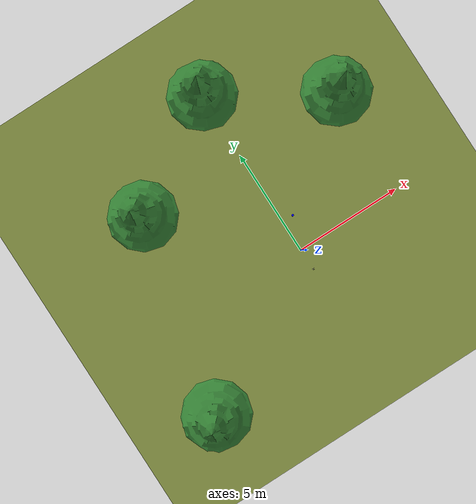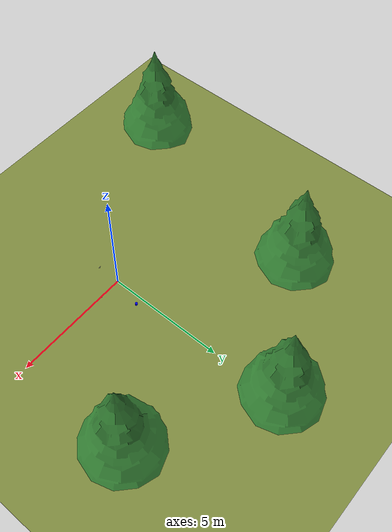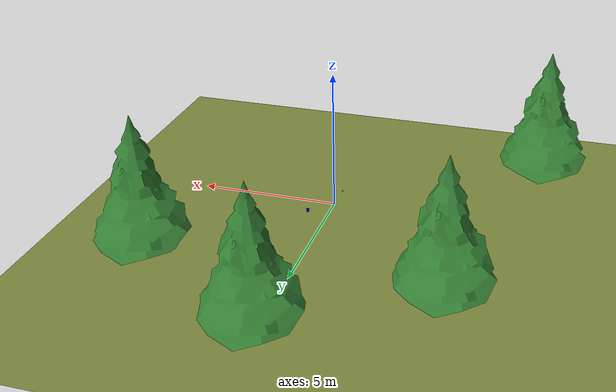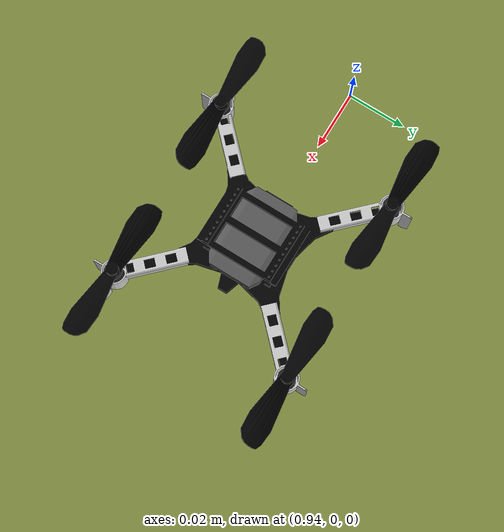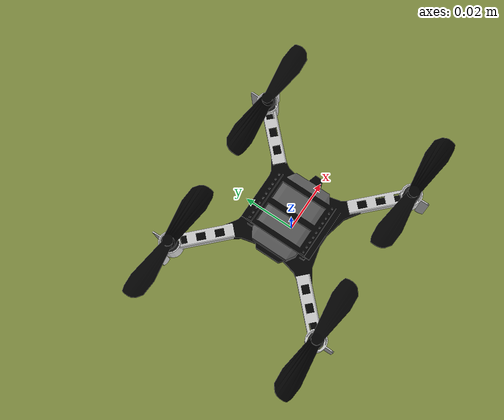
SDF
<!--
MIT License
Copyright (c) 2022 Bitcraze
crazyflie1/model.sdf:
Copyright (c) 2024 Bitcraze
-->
<sdf version="1.6">
 <world name="crazyflie_world">
  <physics name="1ms" type="ode">
   <max_step_size>0.001</max_step_size>
   <real_time_factor>0.04</real_time_factor>
  </physics>
  <plugin filename="gz-sim-physics-system" name="gz::sim::systems::Physics"/>
  <plugin filename="gz-sim-user-commands-system" name="gz::sim::systems::UserCommands"/>
  <plugin filename="gz-sim-scene-broadcaster-system" name="gz::sim::systems::SceneBroadcaster"/>
  <plugin filename="gz-sim-sensors-system" name="gz::sim::systems::Sensors">
   <render_engine>ogre2</render_engine>
  </plugin>
  <light type="directional" name="sun">
   <pose>0 0 10 0 0 0</pose>
   <diffuse>0.8 0.8 0.8 1</diffuse>
   <specular>0.2 0.2 0.2 1</specular>
   <attenuation>
    <range>1000</range>
    <constant>0.9</constant>
    <linear>0.01</linear>
    <quadratic>0.001</quadratic>
   </attenuation>
   <direction>-0.5 0.1 -0.9</direction>
  </light>
  <model name="ground_plane">
   <static>true</static>
   <link name="link">
    <collision name="collision">
     <geometry><plane><normal>0 0 1</normal><size>100 100</size></plane></geometry>
    </collision>
    <visual name="visual">
     <geometry><plane><normal>0 0 1</normal><size>100 100</size></plane></geometry>
     <material>
      <ambient>0.30 0.35 0.15 1</ambient>
      <diffuse>0.50 0.55 0.25 1</diffuse>
      <specular>0.02 0.02 0.02 1</specular>
     </material>
    </visual>
   </link>
  </model>
  <include><uri>model://crazyflie1</uri><name>crazyflie1</name></include>
  <include><uri>model://crazyflie2</uri><name>crazyflie2</name><pose>1 0 0 0 0 0</pose></include>
  <include><uri>model://crazyflie3</uri><name>crazyflie3</name><pose>0 -1 0 0 0 0</pose></include>
  <include><uri>file://lidar_3D.sdf</uri><name>3D_lidar</name><pose>0.5 1.5 0.5 0 0 0</pose></include>
  <include><uri>model://pine_tree</uri><name>pine_tree</name><pose>-5 5 0 0 0 0</pose></include>
  <include><uri>model://pine_tree</uri><name>pine_tree3</name><pose>5 5 0 0 0 0</pose></include>
  <include><uri>model://pine_tree</uri><name>pine_tree4</name><pose>0 8 0 0 0 0</pose></include>
  <include><uri>model://pine_tree</uri><name>pine_tree2</name><pose>-7 -4 0 0 0 0</pose></include>
 </world>
</sdf>

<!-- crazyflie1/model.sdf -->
<sdf version="1.8">
  <model name="crazyflie1">
    <link name="crazyflie1/body">
      <pose> 0 0 17.425E-3 0 0 0</pose>
      <inertial>
        <mass>0.025</mass>
        <inertia>
          <ixx>16.571710E-06</ixx>
          <iyy>16.655602E-06</iyy>
          <izz>29.261652E-06</izz>
          <ixy>0.830806E-06</ixy>
          <ixz>0.718277E-06</ixz>
          <iyz>1.800197E-06</iyz>
        </inertia>
      </inertial>
      <collision name="crazyflie1/body_collision">
        <geometry>
          <box>
            <size>0.10 0.10 34.850E-3</size>
          </box>
        </geometry>
      </collision>
      <visual name="crazyflie1/body_visual">
        <geometry>
          <mesh>
            <uri>../../../meshes/collada_files/cf2_assembly.dae</uri>
          </mesh>
        </geometry>
      </visual>
      <sensor name='multiranger' type='gpu_lidar'>"
        <pose relative_to='crazyflie1/base_link'>0 0 0.1 0 0 0</pose>
        <topic>lidar</topic>
        <update_rate>10</update_rate>
        <ray>
          <scan>
            <horizontal>
                <samples>4</samples>
                <resolution>1</resolution>
                <min_angle>-3.14</min_angle>
                <max_angle>1.57</max_angle>
            </horizontal>
            <vertical>
                <samples>1</samples>
                <resolution>0.01</resolution>
                <min_angle>0</min_angle>
                <max_angle>0</max_angle>
            </vertical>
          </scan>
          <range>
            <min>0.01</min>
            <max>3.49</max>
            <resolution>0.01</resolution>
          </range>
        </ray>
        <always_on>1</always_on>
        <visualize>true</visualize>
      </sensor>
    </link>
    <link name="crazyflie1/m1_prop">
      <pose>0.031 -0.031 0.021 0 0 0</pose>
      <inertial>
        <mass>0.0008</mass>
        <inertia>
          <ixx>8.33333E-09</ixx>
          <iyy>1.08333E-07</iyy>
          <izz>1.13333E-07</izz>
        </inertia>
      </inertial>
      <visual name="crazyflie1/m1_visual">
        <geometry>
          <mesh>
            <uri>../../../meshes/collada_files/ccw_prop.dae</uri>
          </mesh>
        </geometry>
      </visual>
    </link>
    <link name="crazyflie1/m2_prop">
      <pose>-0.031 -0.031 0.021 0 0 0</pose>
      <inertial>
        <mass>0.0008</mass>
        <inertia>
          <ixx>8.33333E-09</ixx>
          <iyy>1.08333E-07</iyy>
          <izz>1.13333E-07</izz>
        </inertia>
      </inertial>
      <visual name="crazyflie1/m2_visual">
        <geometry>
          <mesh>
            <uri>../../../meshes/collada_files/cw_prop.dae</uri>
          </mesh>
        </geometry>
      </visual>
    </link>
    <link name="crazyflie1/m3_prop">
      <pose>-0.031 0.031 0.021 0 0 0</pose>
      <inertial>
        <mass>0.0008</mass>
        <inertia>
          <ixx>8.33333E-09</ixx>
          <iyy>1.08333E-07</iyy>
          <izz>1.13333E-07</izz>
        </inertia>
      </inertial>
      <visual name="crazyflie1/m3_visual">
        <geometry>
          <mesh>
            <uri>../../../meshes/collada_files/ccw_prop.dae</uri>
          </mesh>
        </geometry>
      </visual>
    </link>
    <link name="crazyflie1/m4_prop">
      <pose>0.031 0.031 0.021 0 0 0</pose>
      <inertial>
        <mass>0.0008</mass>
        <inertia>
          <ixx>8.33333E-09</ixx>
          <iyy>1.08333E-07</iyy>
          <izz>1.13333E-07</izz>
        </inertia>
      </inertial>
      <visual name="crazyflie1/m4_visual">
        <geometry>
          <mesh>
            <uri>../../../meshes/collada_files/cw_prop.dae</uri>
          </mesh>
        </geometry>
      </visual>
    </link>
    <joint name="crazyflie1/m1_joint" type="revolute">
      <child>crazyflie1/m1_prop</child>
      <parent>crazyflie1/body</parent>
      <axis>
        <xyz>0 0 1</xyz>
      </axis>
    </joint>
    <joint name="crazyflie1/m2_joint" type="revolute">
      <child>crazyflie1/m2_prop</child>
      <parent>crazyflie1/body</parent>
      <axis>
        <xyz>0 0 1</xyz>
      </axis>
    </joint>
    <joint name="crazyflie1/m3_joint" type="revolute">
      <child>crazyflie1/m3_prop</child>
      <parent>crazyflie1/body</parent>
      <axis>
        <xyz>0 0 1</xyz>
      </axis>
    </joint>
    <joint name="crazyflie1/m4_joint" type="revolute">
      <child>crazyflie1/m4_prop</child>
      <parent>crazyflie1/body</parent>
      <axis>
        <xyz>0 0 1</xyz>
      </axis>
    </joint>
    <plugin
      filename="gz-sim-multicopter-motor-model-system"
      name="gz::sim::systems::MulticopterMotorModel">
      <robotNamespace>crazyflie1</robotNamespace>
      <jointName>crazyflie1/m1_joint</jointName>
      <linkName>crazyflie1/m1_prop</linkName>
      <turningDirection>ccw</turningDirection>
      <maxRotVelocity>2618</maxRotVelocity>
      <motorConstant>1.28192e-08</motorConstant>
      <momentConstant>0.005964552</momentConstant>
      <rotorDragCoefficient>8.06428e-05</rotorDragCoefficient>
      <rollingMomentCoefficient>0.0000001</rollingMomentCoefficient>
      <rotorVelocitySlowdownSim>20</rotorVelocitySlowdownSim>
      <actuator_number>0</actuator_number>
      <motorType>velocity</motorType>
    </plugin>
    <plugin
      filename="gz-sim-multicopter-motor-model-system"
      name="gz::sim::systems::MulticopterMotorModel">
      <robotNamespace>crazyflie1</robotNamespace>
      <jointName>crazyflie1/m2_joint</jointName>
      <linkName>crazyflie1/m2_prop</linkName>
      <turningDirection>cw</turningDirection>
      <maxRotVelocity>2618</maxRotVelocity>
      <motorConstant>1.28192e-08</motorConstant>
      <momentConstant>0.005964552</momentConstant>
      <rotorDragCoefficient>8.06428e-05</rotorDragCoefficient>
      <rollingMomentCoefficient>0.0000001</rollingMomentCoefficient>
      <rotorVelocitySlowdownSim>20</rotorVelocitySlowdownSim>
      <actuator_number>1</actuator_number>
      <motorType>velocity</motorType>
    </plugin>
    <plugin
      filename="gz-sim-multicopter-motor-model-system"
      name="gz::sim::systems::MulticopterMotorModel">
      <robotNamespace>crazyflie1</robotNamespace>
      <jointName>crazyflie1/m3_joint</jointName>
      <linkName>crazyflie1/m3_prop</linkName>
      <turningDirection>ccw</turningDirection>
      <maxRotVelocity>2618</maxRotVelocity>
      <motorConstant>1.28192e-08</motorConstant>
      <momentConstant>0.005964552</momentConstant>
      <rotorDragCoefficient>8.06428e-05</rotorDragCoefficient>
      <rollingMomentCoefficient>0.0000001</rollingMomentCoefficient>
      <rotorVelocitySlowdownSim>20</rotorVelocitySlowdownSim>
      <actuator_number>2</actuator_number>
      <motorType>velocity</motorType>
    </plugin>
    <plugin
      filename="gz-sim-multicopter-motor-model-system"
      name="gz::sim::systems::MulticopterMotorModel">
      <robotNamespace>crazyflie1</robotNamespace>
      <jointName>crazyflie1/m4_joint</jointName>
      <linkName>crazyflie1/m4_prop</linkName>
      <turningDirection>cw</turningDirection>
      <maxRotVelocity>2618</maxRotVelocity>
      <motorConstant>1.28192e-08</motorConstant>
      <momentConstant>0.005964552</momentConstant>
      <rotorDragCoefficient>8.06428e-05</rotorDragCoefficient>
      <rollingMomentCoefficient>0.0000001</rollingMomentCoefficient>
      <rotorVelocitySlowdownSim>20</rotorVelocitySlowdownSim>
      <actuator_number>3</actuator_number>
      <motorType>velocity</motorType>
    </plugin>
    <plugin
      filename="gz-sim-multicopter-control-system"
      name="gz::sim::systems::MulticopterVelocityControl">
      <robotNamespace>crazyflie1</robotNamespace>
      <commandSubTopic>gazebo/command/twist</commandSubTopic>
      <enableSubTopic>enable</enableSubTopic>
      <comLinkName>crazyflie1/body</comLinkName>
      <velocityGain>1.25 1.25 0.2425</velocityGain>
      <attitudeGain>0.02 0.02 0.02</attitudeGain>
      <angularRateGain>0.005 0.005 0.005</angularRateGain>
      <rotorConfiguration>
        <rotor>
          <jointName>crazyflie1/m1_joint</jointName>
          <forceConstant>1.28192e-08</forceConstant>
          <momentConstant>0.005964552</momentConstant>
          <direction>1</direction>
        </rotor>
        <rotor>
          <jointName>crazyflie1/m2_joint</jointName>
          <forceConstant>1.28192e-08</forceConstant>
          <momentConstant>0.005964552</momentConstant>
          <direction>-1</direction>
        </rotor>
        <rotor>
          <jointName>crazyflie1/m3_joint</jointName>
          <forceConstant>1.28192e-08</forceConstant>
          <momentConstant>0.005964552</momentConstant>
          <direction>1</direction>
        </rotor>
        <rotor>
          <jointName>crazyflie1/m4_joint</jointName>
          <forceConstant>1.28192e-08</forceConstant>
          <momentConstant>0.005964552</momentConstant>
          <direction>-1</direction>
        </rotor>
      </rotorConfiguration>
    </plugin>
    <plugin
      filename="gz-sim-odometry-publisher-system"
      name="gz::sim::systems::OdometryPublisher">
      <dimensions>3</dimensions>
    </plugin>
  </model>
</sdf>

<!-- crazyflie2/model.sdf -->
<sdf version="1.8">
  <model name="crazyflie2">
    <link name="crazyflie2/body">
      <pose> 0 0 17.425E-3 0 0 0</pose>
      <inertial>
        <mass>0.025</mass>
        <inertia>
          <ixx>16.571710E-06</ixx>
          <iyy>16.655602E-06</iyy>
          <izz>29.261652E-06</izz>
          <ixy>0.830806E-06</ixy>
          <ixz>0.718277E-06</ixz>
          <iyz>1.800197E-06</iyz>
        </inertia>
      </inertial>
      <collision name="crazyflie2/body_collision">
        <geometry>
          <box>
            <size>0.10 0.10 34.850E-3</size>
          </box>
        </geometry>
      </collision>
      <visual name="crazyflie2/body_visual">
        <geometry>
          <mesh>
            <uri>../../../meshes/collada_files/cf2_assembly.dae</uri>
          </mesh>
        </geometry>
      </visual>
      <sensor name='multiranger' type='gpu_lidar'>"
        <pose relative_to='crazyflie2/base_link'>0 0 0.1 0 0 0</pose>
        <topic>lidar</topic>
        <update_rate>10</update_rate>
        <ray>
          <scan>
            <horizontal>
                <samples>4</samples>
                <resolution>1</resolution>
                <min_angle>-3.14</min_angle>
                <max_angle>1.57</max_angle>
            </horizontal>
            <vertical>
                <samples>1</samples>
                <resolution>0.01</resolution>
                <min_angle>0</min_angle>
                <max_angle>0</max_angle>
            </vertical>
          </scan>
          <range>
            <min>0.01</min>
            <max>3.49</max>
            <resolution>0.01</resolution>
          </range>
        </ray>
        <always_on>1</always_on>
        <visualize>true</visualize>
      </sensor>
    </link>
    <link name="crazyflie2/m1_prop">
      <pose>0.031 -0.031 0.021 0 0 0</pose>
      <inertial>
        <mass>0.0008</mass>
        <inertia>
          <ixx>8.33333E-09</ixx>
          <iyy>1.08333E-07</iyy>
          <izz>1.13333E-07</izz>
        </inertia>
      </inertial>
      <visual name="crazyflie2/m1_visual">
        <geometry>
          <mesh>
            <uri>../../../meshes/collada_files/ccw_prop.dae</uri>
          </mesh>
        </geometry>
      </visual>
    </link>
    <link name="crazyflie2/m2_prop">
      <pose>-0.031 -0.031 0.021 0 0 0</pose>
      <inertial>
        <mass>0.0008</mass>
        <inertia>
          <ixx>8.33333E-09</ixx>
          <iyy>1.08333E-07</iyy>
          <izz>1.13333E-07</izz>
        </inertia>
      </inertial>
      <visual name="crazyflie2/m2_visual">
        <geometry>
          <mesh>
            <uri>../../../meshes/collada_files/cw_prop.dae</uri>
          </mesh>
        </geometry>
      </visual>
    </link>
    <link name="crazyflie2/m3_prop">
      <pose>-0.031 0.031 0.021 0 0 0</pose>
      <inertial>
        <mass>0.0008</mass>
        <inertia>
          <ixx>8.33333E-09</ixx>
          <iyy>1.08333E-07</iyy>
          <izz>1.13333E-07</izz>
        </inertia>
      </inertial>
      <visual name="crazyflie2/m3_visual">
        <geometry>
          <mesh>
            <uri>../../../meshes/collada_files/ccw_prop.dae</uri>
          </mesh>
        </geometry>
      </visual>
    </link>
    <link name="crazyflie2/m4_prop">
      <pose>0.031 0.031 0.021 0 0 0</pose>
      <inertial>
        <mass>0.0008</mass>
        <inertia>
          <ixx>8.33333E-09</ixx>
          <iyy>1.08333E-07</iyy>
          <izz>1.13333E-07</izz>
        </inertia>
      </inertial>
      <visual name="crazyflie2/m4_visual">
        <geometry>
          <mesh>
            <uri>../../../meshes/collada_files/cw_prop.dae</uri>
          </mesh>
        </geometry>
      </visual>
    </link>
    <joint name="crazyflie2/m1_joint" type="revolute">
      <child>crazyflie2/m1_prop</child>
      <parent>crazyflie2/body</parent>
      <axis>
        <xyz>0 0 1</xyz>
      </axis>
    </joint>
    <joint name="crazyflie2/m2_joint" type="revolute">
      <child>crazyflie2/m2_prop</child>
      <parent>crazyflie2/body</parent>
      <axis>
        <xyz>0 0 1</xyz>
      </axis>
    </joint>
    <joint name="crazyflie2/m3_joint" type="revolute">
      <child>crazyflie2/m3_prop</child>
      <parent>crazyflie2/body</parent>
      <axis>
        <xyz>0 0 1</xyz>
      </axis>
    </joint>
    <joint name="crazyflie2/m4_joint" type="revolute">
      <child>crazyflie2/m4_prop</child>
      <parent>crazyflie2/body</parent>
      <axis>
        <xyz>0 0 1</xyz>
      </axis>
    </joint>
    <plugin
      filename="gz-sim-multicopter-motor-model-system"
      name="gz::sim::systems::MulticopterMotorModel">
      <robotNamespace>crazyflie2</robotNamespace>
      <jointName>crazyflie2/m1_joint</jointName>
      <linkName>crazyflie2/m1_prop</linkName>
      <turningDirection>ccw</turningDirection>
      <maxRotVelocity>2618</maxRotVelocity>
      <motorConstant>1.28192e-08</motorConstant>
      <momentConstant>0.005964552</momentConstant>
      <rotorDragCoefficient>8.06428e-05</rotorDragCoefficient>
      <rollingMomentCoefficient>0.0000001</rollingMomentCoefficient>
      <rotorVelocitySlowdownSim>20</rotorVelocitySlowdownSim>
      <actuator_number>0</actuator_number>
      <motorType>velocity</motorType>
    </plugin>
    <plugin
      filename="gz-sim-multicopter-motor-model-system"
      name="gz::sim::systems::MulticopterMotorModel">
      <robotNamespace>crazyflie2</robotNamespace>
      <jointName>crazyflie2/m2_joint</jointName>
      <linkName>crazyflie2/m2_prop</linkName>
      <turningDirection>cw</turningDirection>
      <maxRotVelocity>2618</maxRotVelocity>
      <motorConstant>1.28192e-08</motorConstant>
      <momentConstant>0.005964552</momentConstant>
      <rotorDragCoefficient>8.06428e-05</rotorDragCoefficient>
      <rollingMomentCoefficient>0.0000001</rollingMomentCoefficient>
      <rotorVelocitySlowdownSim>20</rotorVelocitySlowdownSim>
      <actuator_number>1</actuator_number>
      <motorType>velocity</motorType>
    </plugin>
    <plugin
      filename="gz-sim-multicopter-motor-model-system"
      name="gz::sim::systems::MulticopterMotorModel">
      <robotNamespace>crazyflie2</robotNamespace>
      <jointName>crazyflie2/m3_joint</jointName>
      <linkName>crazyflie2/m3_prop</linkName>
      <turningDirection>ccw</turningDirection>
      <maxRotVelocity>2618</maxRotVelocity>
      <motorConstant>1.28192e-08</motorConstant>
      <momentConstant>0.005964552</momentConstant>
      <rotorDragCoefficient>8.06428e-05</rotorDragCoefficient>
      <rollingMomentCoefficient>0.0000001</rollingMomentCoefficient>
      <rotorVelocitySlowdownSim>20</rotorVelocitySlowdownSim>
      <actuator_number>2</actuator_number>
      <motorType>velocity</motorType>
    </plugin>
    <plugin
      filename="gz-sim-multicopter-motor-model-system"
      name="gz::sim::systems::MulticopterMotorModel">
      <robotNamespace>crazyflie2</robotNamespace>
      <jointName>crazyflie2/m4_joint</jointName>
      <linkName>crazyflie2/m4_prop</linkName>
      <turningDirection>cw</turningDirection>
      <maxRotVelocity>2618</maxRotVelocity>
      <motorConstant>1.28192e-08</motorConstant>
      <momentConstant>0.005964552</momentConstant>
      <rotorDragCoefficient>8.06428e-05</rotorDragCoefficient>
      <rollingMomentCoefficient>0.0000001</rollingMomentCoefficient>
      <rotorVelocitySlowdownSim>20</rotorVelocitySlowdownSim>
      <actuator_number>3</actuator_number>
      <motorType>velocity</motorType>
    </plugin>
    <plugin
      filename="gz-sim-multicopter-control-system"
      name="gz::sim::systems::MulticopterVelocityControl">
      <robotNamespace>crazyflie2</robotNamespace>
      <commandSubTopic>gazebo/command/twist</commandSubTopic>
      <enableSubTopic>enable</enableSubTopic>
      <comLinkName>crazyflie2/body</comLinkName>
      <velocityGain>1.25 1.25 0.2425</velocityGain>
      <attitudeGain>0.02 0.02 0.02</attitudeGain>
      <angularRateGain>0.005 0.005 0.005</angularRateGain>
      <rotorConfiguration>
        <rotor>
          <jointName>crazyflie2/m1_joint</jointName>
          <forceConstant>1.28192e-08</forceConstant>
          <momentConstant>0.005964552</momentConstant>
          <direction>1</direction>
        </rotor>
        <rotor>
          <jointName>crazyflie2/m2_joint</jointName>
          <forceConstant>1.28192e-08</forceConstant>
          <momentConstant>0.005964552</momentConstant>
          <direction>-1</direction>
        </rotor>
        <rotor>
          <jointName>crazyflie2/m3_joint</jointName>
          <forceConstant>1.28192e-08</forceConstant>
          <momentConstant>0.005964552</momentConstant>
          <direction>1</direction>
        </rotor>
        <rotor>
          <jointName>crazyflie2/m4_joint</jointName>
          <forceConstant>1.28192e-08</forceConstant>
          <momentConstant>0.005964552</momentConstant>
          <direction>-1</direction>
        </rotor>
      </rotorConfiguration>
    </plugin>
    <plugin
      filename="gz-sim-odometry-publisher-system"
      name="gz::sim::systems::OdometryPublisher">
      <dimensions>3</dimensions>
    </plugin>
  </model>
</sdf>

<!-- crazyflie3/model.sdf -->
<sdf version="1.8">
  <model name="crazyflie3">
    <link name="crazyflie3/body">
      <pose> 0 0 17.425E-3 0 0 0</pose>
      <inertial>
        <mass>0.025</mass>
        <inertia>
          <ixx>16.571710E-06</ixx>
          <iyy>16.655602E-06</iyy>
          <izz>29.261652E-06</izz>
          <ixy>0.830806E-06</ixy>
          <ixz>0.718277E-06</ixz>
          <iyz>1.800197E-06</iyz>
        </inertia>
      </inertial>
      <collision name="crazyflie3/body_collision">
        <geometry>
          <box>
            <size>0.10 0.10 34.850E-3</size>
          </box>
        </geometry>
      </collision>
      <visual name="crazyflie3/body_visual">
        <geometry>
          <mesh>
            <uri>../../../meshes/collada_files/cf2_assembly.dae</uri>
          </mesh>
        </geometry>
      </visual>
      <sensor name='multiranger' type='gpu_lidar'>"
        <pose relative_to='crazyflie3/base_link'>0 0 0.1 0 0 0</pose>
        <topic>lidar</topic>
        <update_rate>10</update_rate>
        <ray>
          <scan>
            <horizontal>
                <samples>4</samples>
                <resolution>1</resolution>
                <min_angle>-3.14</min_angle>
                <max_angle>1.57</max_angle>
            </horizontal>
            <vertical>
                <samples>1</samples>
                <resolution>0.01</resolution>
                <min_angle>0</min_angle>
                <max_angle>0</max_angle>
            </vertical>
          </scan>
          <range>
            <min>0.01</min>
            <max>3.49</max>
            <resolution>0.01</resolution>
          </range>
        </ray>
        <always_on>1</always_on>
        <visualize>true</visualize>
      </sensor>
    </link>
    <link name="crazyflie3/m1_prop">
      <pose>0.031 -0.031 0.021 0 0 0</pose>
      <inertial>
        <mass>0.0008</mass>
        <inertia>
          <ixx>8.33333E-09</ixx>
          <iyy>1.08333E-07</iyy>
          <izz>1.13333E-07</izz>
        </inertia>
      </inertial>
      <visual name="crazyflie3/m1_visual">
        <geometry>
          <mesh>
            <uri>../../../meshes/collada_files/ccw_prop.dae</uri>
          </mesh>
        </geometry>
      </visual>
    </link>
    <link name="crazyflie3/m2_prop">
      <pose>-0.031 -0.031 0.021 0 0 0</pose>
      <inertial>
        <mass>0.0008</mass>
        <inertia>
          <ixx>8.33333E-09</ixx>
          <iyy>1.08333E-07</iyy>
          <izz>1.13333E-07</izz>
        </inertia>
      </inertial>
      <visual name="crazyflie3/m2_visual">
        <geometry>
          <mesh>
            <uri>../../../meshes/collada_files/cw_prop.dae</uri>
          </mesh>
        </geometry>
      </visual>
    </link>
    <link name="crazyflie3/m3_prop">
      <pose>-0.031 0.031 0.021 0 0 0</pose>
      <inertial>
        <mass>0.0008</mass>
        <inertia>
          <ixx>8.33333E-09</ixx>
          <iyy>1.08333E-07</iyy>
          <izz>1.13333E-07</izz>
        </inertia>
      </inertial>
      <visual name="crazyflie3/m3_visual">
        <geometry>
          <mesh>
            <uri>../../../meshes/collada_files/ccw_prop.dae</uri>
          </mesh>
        </geometry>
      </visual>
    </link>
    <link name="crazyflie3/m4_prop">
      <pose>0.031 0.031 0.021 0 0 0</pose>
      <inertial>
        <mass>0.0008</mass>
        <inertia>
          <ixx>8.33333E-09</ixx>
          <iyy>1.08333E-07</iyy>
          <izz>1.13333E-07</izz>
        </inertia>
      </inertial>
      <visual name="crazyflie3/m4_visual">
        <geometry>
          <mesh>
            <uri>../../../meshes/collada_files/cw_prop.dae</uri>
          </mesh>
        </geometry>
      </visual>
    </link>
    <joint name="crazyflie3/m1_joint" type="revolute">
      <child>crazyflie3/m1_prop</child>
      <parent>crazyflie3/body</parent>
      <axis>
        <xyz>0 0 1</xyz>
      </axis>
    </joint>
    <joint name="crazyflie3/m2_joint" type="revolute">
      <child>crazyflie3/m2_prop</child>
      <parent>crazyflie3/body</parent>
      <axis>
        <xyz>0 0 1</xyz>
      </axis>
    </joint>
    <joint name="crazyflie3/m3_joint" type="revolute">
      <child>crazyflie3/m3_prop</child>
      <parent>crazyflie3/body</parent>
      <axis>
        <xyz>0 0 1</xyz>
      </axis>
    </joint>
    <joint name="crazyflie3/m4_joint" type="revolute">
      <child>crazyflie3/m4_prop</child>
      <parent>crazyflie3/body</parent>
      <axis>
        <xyz>0 0 1</xyz>
      </axis>
    </joint>
    <plugin
      filename="gz-sim-multicopter-motor-model-system"
      name="gz::sim::systems::MulticopterMotorModel">
      <robotNamespace>crazyflie3</robotNamespace>
      <jointName>crazyflie3/m1_joint</jointName>
      <linkName>crazyflie3/m1_prop</linkName>
      <turningDirection>ccw</turningDirection>
      <maxRotVelocity>2618</maxRotVelocity>
      <motorConstant>1.28192e-08</motorConstant>
      <momentConstant>0.005964552</momentConstant>
      <rotorDragCoefficient>8.06428e-05</rotorDragCoefficient>
      <rollingMomentCoefficient>0.0000001</rollingMomentCoefficient>
      <rotorVelocitySlowdownSim>20</rotorVelocitySlowdownSim>
      <actuator_number>0</actuator_number>
      <motorType>velocity</motorType>
    </plugin>
    <plugin
      filename="gz-sim-multicopter-motor-model-system"
      name="gz::sim::systems::MulticopterMotorModel">
      <robotNamespace>crazyflie3</robotNamespace>
      <jointName>crazyflie3/m2_joint</jointName>
      <linkName>crazyflie3/m2_prop</linkName>
      <turningDirection>cw</turningDirection>
      <maxRotVelocity>2618</maxRotVelocity>
      <motorConstant>1.28192e-08</motorConstant>
      <momentConstant>0.005964552</momentConstant>
      <rotorDragCoefficient>8.06428e-05</rotorDragCoefficient>
      <rollingMomentCoefficient>0.0000001</rollingMomentCoefficient>
      <rotorVelocitySlowdownSim>20</rotorVelocitySlowdownSim>
      <actuator_number>1</actuator_number>
      <motorType>velocity</motorType>
    </plugin>
    <plugin
      filename="gz-sim-multicopter-motor-model-system"
      name="gz::sim::systems::MulticopterMotorModel">
      <robotNamespace>crazyflie3</robotNamespace>
      <jointName>crazyflie3/m3_joint</jointName>
      <linkName>crazyflie3/m3_prop</linkName>
      <turningDirection>ccw</turningDirection>
      <maxRotVelocity>2618</maxRotVelocity>
      <motorConstant>1.28192e-08</motorConstant>
      <momentConstant>0.005964552</momentConstant>
      <rotorDragCoefficient>8.06428e-05</rotorDragCoefficient>
      <rollingMomentCoefficient>0.0000001</rollingMomentCoefficient>
      <rotorVelocitySlowdownSim>20</rotorVelocitySlowdownSim>
      <actuator_number>2</actuator_number>
      <motorType>velocity</motorType>
    </plugin>
    <plugin
      filename="gz-sim-multicopter-motor-model-system"
      name="gz::sim::systems::MulticopterMotorModel">
      <robotNamespace>crazyflie3</robotNamespace>
      <jointName>crazyflie3/m4_joint</jointName>
      <linkName>crazyflie3/m4_prop</linkName>
      <turningDirection>cw</turningDirection>
      <maxRotVelocity>2618</maxRotVelocity>
      <motorConstant>1.28192e-08</motorConstant>
      <momentConstant>0.005964552</momentConstant>
      <rotorDragCoefficient>8.06428e-05</rotorDragCoefficient>
      <rollingMomentCoefficient>0.0000001</rollingMomentCoefficient>
      <rotorVelocitySlowdownSim>20</rotorVelocitySlowdownSim>
      <actuator_number>3</actuator_number>
      <motorType>velocity</motorType>
    </plugin>
    <plugin
      filename="gz-sim-multicopter-control-system"
      name="gz::sim::systems::MulticopterVelocityControl">
      <robotNamespace>crazyflie3</robotNamespace>
      <commandSubTopic>gazebo/command/twist</commandSubTopic>
      <enableSubTopic>enable</enableSubTopic>
      <comLinkName>crazyflie3/body</comLinkName>
      <velocityGain>1.25 1.25 0.2425</velocityGain>
      <attitudeGain>0.02 0.02 0.02</attitudeGain>
      <angularRateGain>0.005 0.005 0.005</angularRateGain>
      <rotorConfiguration>
        <rotor>
          <jointName>crazyflie3/m1_joint</jointName>
          <forceConstant>1.28192e-08</forceConstant>
          <momentConstant>0.005964552</momentConstant>
          <direction>1</direction>
        </rotor>
        <rotor>
          <jointName>crazyflie3/m2_joint</jointName>
          <forceConstant>1.28192e-08</forceConstant>
          <momentConstant>0.005964552</momentConstant>
          <direction>-1</direction>
        </rotor>
        <rotor>
          <jointName>crazyflie3/m3_joint</jointName>
          <forceConstant>1.28192e-08</forceConstant>
          <momentConstant>0.005964552</momentConstant>
          <direction>1</direction>
        </rotor>
        <rotor>
          <jointName>crazyflie3/m4_joint</jointName>
          <forceConstant>1.28192e-08</forceConstant>
          <momentConstant>0.005964552</momentConstant>
          <direction>-1</direction>
        </rotor>
      </rotorConfiguration>
    </plugin>
    <plugin
      filename="gz-sim-odometry-publisher-system"
      name="gz::sim::systems::OdometryPublisher">
      <dimensions>3</dimensions>
    </plugin>
  </model>
</sdf>

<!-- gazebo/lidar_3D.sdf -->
<sdf version="1.6">

  <model name="3D_lidar_model">
    <static>true</static>

    <link name="3Dlidar_link">
        <visual name="3Dlidar_visual">
          <geometry>
            <cylinder>
              <radius>0.05</radius>
              <length>0.1</length>
            </cylinder>
          </geometry>
          <material>
            <ambient>0 0 1 1</ambient>
            <diffuse>0 0 1 1</diffuse>
          </material>
        </visual>

      <sensor name="3D_lidar" type="gpu_lidar">
        <always_on>1</always_on>
        <update_rate>5</update_rate>
        <topic>my_3D_lidar</topic>

        <lidar>
          <scan>

            <horizontal>
              <samples>512</samples>
              <resolution>1</resolution>
              <min_angle>-3.14159</min_angle>
              <max_angle>3.14159</max_angle>
            </horizontal>

            <vertical>
              <samples>128</samples>
              <resolution>1</resolution>
              <min_angle>-0.79</min_angle>
              <max_angle>0.79</max_angle>
            </vertical> <!-- ouster os0 -->

          </scan>

          <range>
            <min>0.1</min>
            <max>75.0</max>
          </range>

        </lidar>

        <visualize>true</visualize>

      </sensor>

    </link>

  </model>

</sdf>

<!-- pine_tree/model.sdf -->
<sdf version="1.6">
  <model name="pine_tree">
    <static>true</static>
    <link name="link">
      <collision name="collision">
        <geometry>
          <mesh>
            <uri>model://pine_tree/meshes/pine_tree.dae</uri>
          </mesh>
        </geometry>
      </collision>
      <visual name="branch">
        <geometry>
          <mesh>
            <uri>model://pine_tree/meshes/pine_tree.dae</uri>
            <submesh>
              <name>Branch</name>
            </submesh>
          </mesh>
        </geometry>
        <material>
          <ambient>0.2 0.5 0.2 1</ambient>
          <diffuse>0.2 0.5 0.2 1</diffuse>
          <specular>0.1 0.1 0.1 1</specular>
        </material>
      </visual>
      <visual name="bark">
        <geometry>
          <mesh>
            <uri>model://pine_tree/meshes/pine_tree.dae</uri>
            <submesh>
              <name>Bark</name>
            </submesh>
          </mesh>
        </geometry>
        <material>
          <ambient>0.25 0.15 0.08 1</ambient>
          <diffuse>0.35 0.22 0.12 1</diffuse>
          <specular>0.05 0.05 0.05 1</specular>
        </material>
      </visual>
    </link>
  </model>
</sdf>
